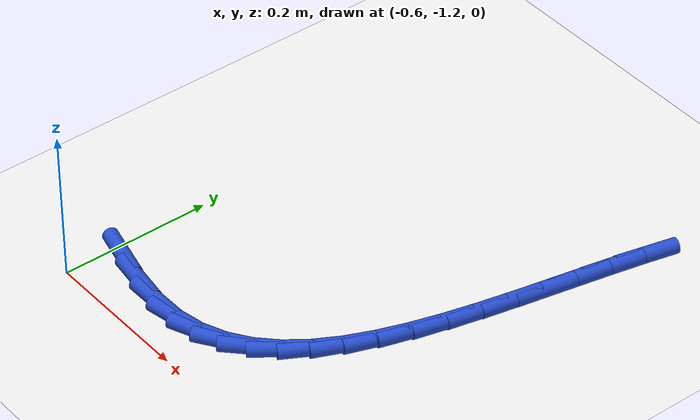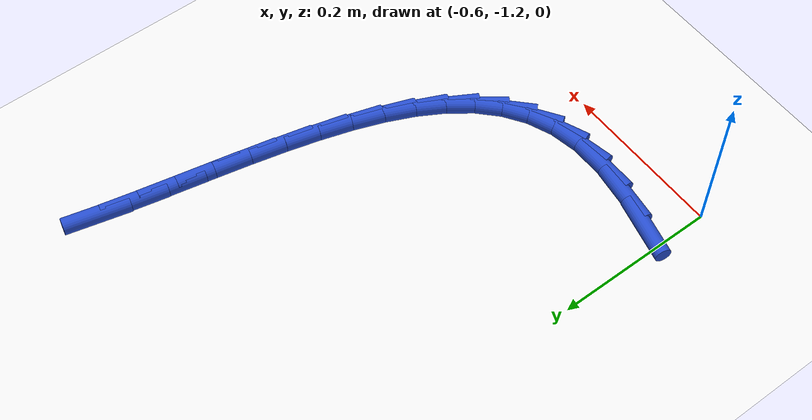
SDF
<sdf version="1.6">
 <world name="default">
  <model name="ground_plane">
   <static>1</static>
   <link name="link">
    <collision name="collision">
     <geometry><plane><normal>0 0 1</normal><size>100 100</size></plane></geometry>
     <surface><friction><ode><mu>100</mu><mu2>50</mu2></ode></friction></surface>
    </collision>
    <visual name="visual">
     <cast_shadows>0</cast_shadows>
     <geometry><plane><normal>0 0 1</normal><size>100 100</size></plane></geometry>
     <material>
      <script><uri>file://media/materials/scripts/gazebo.material</uri><name>Gazebo/WhiteGlow</name></script>
     </material>
    </visual>
   </link>
  </model>
  <model name="line">
   <link name="link_184">
    <pose>-0.5768699438693418 -1.1351556420563822 0.01 0 1.57 -0.23921423699627822</pose>
    <collision name="collision">
     <geometry><cylinder><radius>0.01</radius><length>0.08</length></cylinder></geometry>
    </collision>
    <visual name="visual">
     <material>
      <script><name>Gazebo/Blue</name><uri>file://media/materials/scripts/gazebo.material</uri></script>
     </material>
     <geometry><cylinder><radius>0.01</radius><length>0.08</length></cylinder></geometry>
    </visual>
   </link>
   <link name="link_185">
    <pose>-0.5293649884288076 -1.1467413426631445 0.01 0 1.57 -0.13901065506523191</pose>
    <collision name="collision">
     <geometry><cylinder><radius>0.01</radius><length>0.08</length></cylinder></geometry>
    </collision>
    <visual name="visual">
     <material>
      <script><name>Gazebo/Blue</name><uri>file://media/materials/scripts/gazebo.material</uri></script>
     </material>
     <geometry><cylinder><radius>0.01</radius><length>0.08</length></cylinder></geometry>
    </visual>
   </link>
   <link name="link_186">
    <pose>-0.4852010812220202 -1.152920449311545 0.01 0 1.57 0.007740804543685337</pose>
    <collision name="collision">
     <geometry><cylinder><radius>0.01</radius><length>0.08</length></cylinder></geometry>
    </collision>
    <visual name="visual">
     <material>
      <script><name>Gazebo/Blue</name><uri>file://media/materials/scripts/gazebo.material</uri></script>
     </material>
     <geometry><cylinder><radius>0.01</radius><length>0.08</length></cylinder></geometry>
    </visual>
   </link>
   <link name="link_187">
    <pose>-0.44542984321826345 -1.1526125817825266 0.01 0 1.57 0.19054006695610726</pose>
    <collision name="collision">
     <geometry><cylinder><radius>0.01</radius><length>0.08</length></cylinder></geometry>
    </collision>
    <visual name="visual">
     <material>
      <script><name>Gazebo/Blue</name><uri>file://media/materials/scripts/gazebo.material</uri></script>
     </material>
     <geometry><cylinder><radius>0.01</radius><length>0.08</length></cylinder></geometry>
    </visual>
   </link>
   <link name="link_188">
    <pose>-0.4101555059780975 -1.1458088697972049 0.01 0 1.57 0.3899051916788465</pose>
    <collision name="collision">
     <geometry><cylinder><radius>0.01</radius><length>0.08</length></cylinder></geometry>
    </collision>
    <visual name="visual">
     <material>
      <script><name>Gazebo/Blue</name><uri>file://media/materials/scripts/gazebo.material</uri></script>
     </material>
     <geometry><cylinder><radius>0.01</radius><length>0.08</length></cylinder></geometry>
    </visual>
   </link>
   <link name="link_189">
    <pose>-0.37902609233149204 -1.1330164211793878 0.01 0 1.57 0.5891289267922796</pose>
    <collision name="collision">
     <geometry><cylinder><radius>0.01</radius><length>0.08</length></cylinder></geometry>
    </collision>
    <visual name="visual">
     <material>
      <script><name>Gazebo/Blue</name><uri>file://media/materials/scripts/gazebo.material</uri></script>
     </material>
     <geometry><cylinder><radius>0.01</radius><length>0.08</length></cylinder></geometry>
    </visual>
   </link>
   <link name="link_190">
    <pose>-0.351686702597733 -1.1147456491510828 0.01 0 1.57 0.7712806951672673</pose>
    <collision name="collision">
     <geometry><cylinder><radius>0.01</radius><length>0.08</length></cylinder></geometry>
    </collision>
    <visual name="visual">
     <material>
      <script><name>Gazebo/Blue</name><uri>file://media/materials/scripts/gazebo.material</uri></script>
     </material>
     <geometry><cylinder><radius>0.01</radius><length>0.08</length></cylinder></geometry>
    </visual>
   </link>
   <link name="link_191">
    <pose>-0.3277824370961087 -1.0915069669342994 0.01 0 1.57 0.9260968459652867</pose>
    <collision name="collision">
     <geometry><cylinder><radius>0.01</radius><length>0.08</length></cylinder></geometry>
    </collision>
    <visual name="visual">
     <material>
      <script><name>Gazebo/Blue</name><uri>file://media/materials/scripts/gazebo.material</uri></script>
     </material>
     <geometry><cylinder><radius>0.01</radius><length>0.08</length></cylinder></geometry>
    </visual>
   </link>
   <link name="link_192">
    <pose>-0.30695839614590537 -1.0638107877510448 0.01 0 1.57 1.0512488455511744</pose>
    <collision name="collision">
     <geometry><cylinder><radius>0.01</radius><length>0.08</length></cylinder></geometry>
    </collision>
    <visual name="visual">
     <material>
      <script><name>Gazebo/Blue</name><uri>file://media/materials/scripts/gazebo.material</uri></script>
     </material>
     <geometry><cylinder><radius>0.01</radius><length>0.08</length></cylinder></geometry>
    </visual>
   </link>
   <link name="link_193">
    <pose>-0.2888596800664099 -1.0321675248233273 0.01 0 1.57 1.1493105771958134</pose>
    <collision name="collision">
     <geometry><cylinder><radius>0.01</radius><length>0.08</length></cylinder></geometry>
    </collision>
    <visual name="visual">
     <material>
      <script><name>Gazebo/Blue</name><uri>file://media/materials/scripts/gazebo.material</uri></script>
     </material>
     <geometry><cylinder><radius>0.01</radius><length>0.08</length></cylinder></geometry>
    </visual>
   </link>
   <link name="link_194">
    <pose>-0.2731313891769092 -0.9970875913731557 0.01 0 1.57 1.224529644128542</pose>
    <collision name="collision">
     <geometry><cylinder><radius>0.01</radius><length>0.08</length></cylinder></geometry>
    </collision>
    <visual name="visual">
     <material>
      <script><name>Gazebo/Blue</name><uri>file://media/materials/scripts/gazebo.material</uri></script>
     </material>
     <geometry><cylinder><radius>0.01</radius><length>0.08</length></cylinder></geometry>
    </visual>
   </link>
   <link name="link_195">
    <pose>-0.2594186237966898 -0.9590814006225366 0.01 0 1.57 1.2810306030470842</pose>
    <collision name="collision">
     <geometry><cylinder><radius>0.01</radius><length>0.08</length></cylinder></geometry>
    </collision>
    <visual name="visual">
     <material>
      <script><name>Gazebo/Blue</name><uri>file://media/materials/scripts/gazebo.material</uri></script>
     </material>
     <geometry><cylinder><radius>0.01</radius><length>0.08</length></cylinder></geometry>
    </visual>
   </link>
   <link name="link_196">
    <pose>-0.2473664842450393 -0.9186593657934802 0.01 0 1.57 1.3221622232015429</pose>
    <collision name="collision">
     <geometry><cylinder><radius>0.01</radius><length>0.08</length></cylinder></geometry>
    </collision>
    <visual name="visual">
     <material>
      <script><name>Gazebo/Blue</name><uri>file://media/materials/scripts/gazebo.material</uri></script>
     </material>
     <geometry><cylinder><radius>0.01</radius><length>0.08</length></cylinder></geometry>
    </visual>
   </link>
   <link name="link_197">
    <pose>-0.2366200708412441 -0.8763319001079933 0.01 0 1.57 1.3503957752820857</pose>
    <collision name="collision">
     <geometry><cylinder><radius>0.01</radius><length>0.08</length></cylinder></geometry>
    </collision>
    <visual name="visual">
     <material>
      <script><name>Gazebo/Blue</name><uri>file://media/materials/scripts/gazebo.material</uri></script>
     </material>
     <geometry><cylinder><radius>0.01</radius><length>0.08</length></cylinder></geometry>
    </visual>
   </link>
   <link name="link_198">
    <pose>-0.22682448390459123 -0.8326094167880846 0.01 0 1.57 1.3674103013162937</pose>
    <collision name="collision">
     <geometry><cylinder><radius>0.01</radius><length>0.08</length></cylinder></geometry>
    </collision>
    <visual name="visual">
     <material>
      <script><name>Gazebo/Blue</name><uri>file://media/materials/scripts/gazebo.material</uri></script>
     </material>
     <geometry><cylinder><radius>0.01</radius><length>0.08</length></cylinder></geometry>
    </visual>
   </link>
   <link name="link_199">
    <pose>-0.2176248237543674 -0.7880023290557615 0.01 0 1.57 1.3742051354369762</pose>
    <collision name="collision">
     <geometry><cylinder><radius>0.01</radius><length>0.08</length></cylinder></geometry>
    </collision>
    <visual name="visual">
     <material>
      <script><name>Gazebo/Blue</name><uri>file://media/materials/scripts/gazebo.material</uri></script>
     </material>
     <geometry><cylinder><radius>0.01</radius><length>0.08</length></cylinder></geometry>
    </visual>
   </link>
   <link name="link_200">
    <pose>-0.20866619070985984 -0.7430210501330337 0.01 0 1.57 1.3711826989658558</pose>
    <collision name="collision">
     <geometry><cylinder><radius>0.01</radius><length>0.08</length></cylinder></geometry>
    </collision>
    <visual name="visual">
     <material>
      <script><name>Gazebo/Blue</name><uri>file://media/materials/scripts/gazebo.material</uri></script>
     </material>
     <geometry><cylinder><radius>0.01</radius><length>0.08</length></cylinder></geometry>
    </visual>
   </link>
   <link name="link_201">
    <pose>-0.1995936850903553 -0.6981759932419084 0.01 0 1.57 1.3581851963059008</pose>
    <collision name="collision">
     <geometry><cylinder><radius>0.01</radius><length>0.08</length></cylinder></geometry>
    </collision>
    <visual name="visual">
     <material>
      <script><name>Gazebo/Blue</name><uri>file://media/materials/scripts/gazebo.material</uri></script>
     </material>
     <geometry><cylinder><radius>0.01</radius><length>0.08</length></cylinder></geometry>
    </visual>
   </link>
   <link name="link_202">
    <pose>-0.19005240721514058 -0.653977571604394 0.01 0 1.57 1.3344821599336623</pose>
    <collision name="collision">
     <geometry><cylinder><radius>0.01</radius><length>0.08</length></cylinder></geometry>
    </collision>
    <visual name="visual">
     <material>
      <script><name>Gazebo/Blue</name><uri>file://media/materials/scripts/gazebo.material</uri></script>
     </material>
     <geometry><cylinder><radius>0.01</radius><length>0.08</length></cylinder></geometry>
    </visual>
   </link>
  </model>
 </world>
</sdf>
